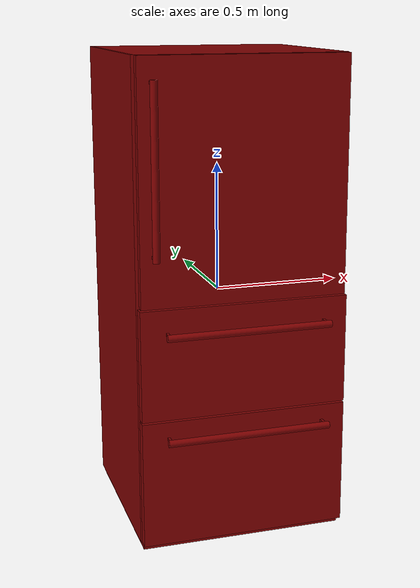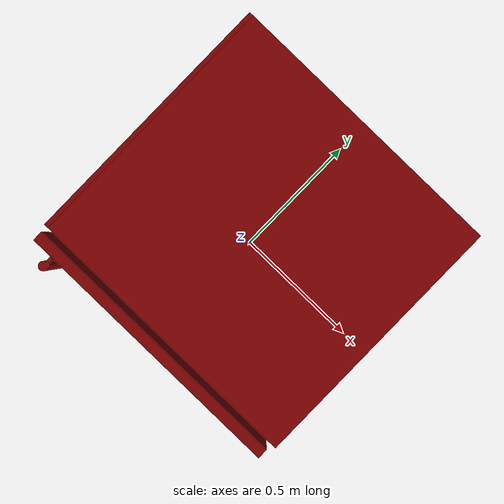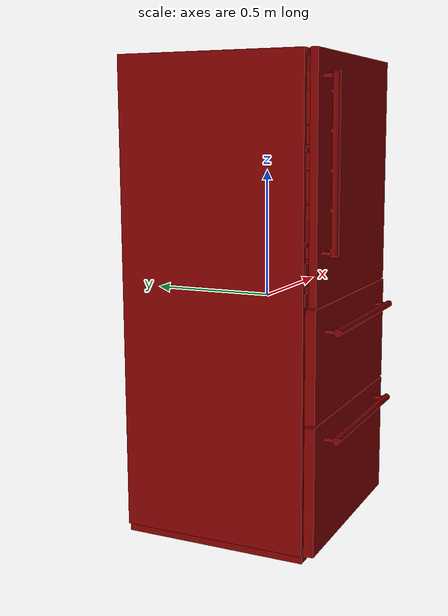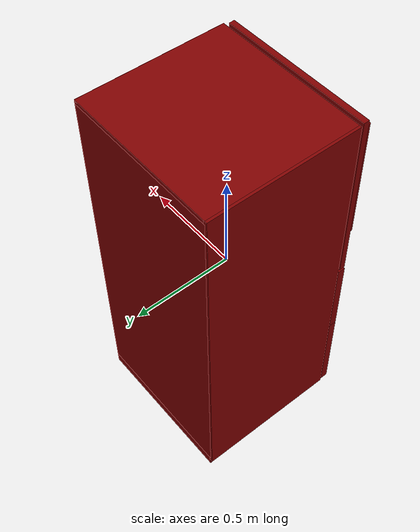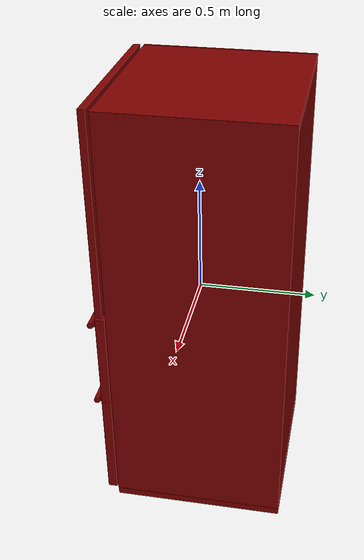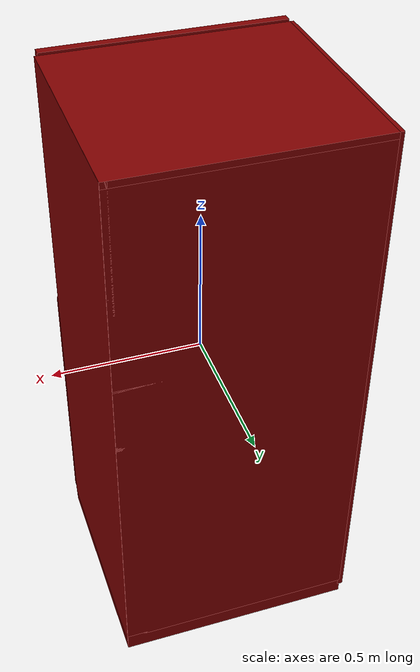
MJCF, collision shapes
<mujoco model="model">
  <compiler angle="radian"/>
  <asset>
    <mesh file="visuals/Body001.obj" name="Body001_vis"/>
    <mesh file="visuals/Body001_Clear.obj" name="Body001_Clear_vis"/>
    <mesh file="visuals/Door001.obj" name="Door001_vis"/>
    <mesh file="visuals/Door001_Clear.obj" name="Door001_Clear_vis"/>
    <mesh file="visuals/Drawer001.obj" name="Drawer001_vis"/>
    <mesh file="visuals/Drawer002.obj" name="Drawer002_vis"/>
    <mesh file="visuals/Drawer003.obj" name="Drawer003_vis"/>
    <texture file="visuals/T_BC001.png" name="Body001_material" type="2d"/>
    <material name="Body001_material" rgba="1 1 1 1.0" texture="Body001_material" shininess="0.141421377658844" specular="0.3103448502657381"/>
    <texture file="visuals/T_BC001.png" name="Body001_Clear_material" type="2d"/>
    <material name="Body001_Clear_material" rgba="1 1 1 0.3700787425041199" texture="Body001_Clear_material" shininess="0.5" specular="0.3103448502657381"/>
    <texture file="visuals/T_BC001.png" name="Door001_material" type="2d"/>
    <material name="Door001_material" rgba="1 1 1 1.0" texture="Door001_material" shininess="0.141421377658844" specular="0.3103448502657381"/>
    <texture file="visuals/T_BC001.png" name="Door001_Clear_material" type="2d"/>
    <material name="Door001_Clear_material" rgba="1 1 1 0.3700787425041199" texture="Door001_Clear_material" shininess="0.5" specular="0.3103448502657381"/>
    <texture file="visuals/T_BC001.png" name="Drawer001_material" type="2d"/>
    <material name="Drawer001_material" rgba="1 1 1 1.0" texture="Drawer001_material" shininess="0.141421377658844" specular="0.3103448502657381"/>
    <texture file="visuals/T_BC001.png" name="Drawer002_material" type="2d"/>
    <material name="Drawer002_material" rgba="1 1 1 1.0" texture="Drawer002_material" shininess="0.141421377658844" specular="0.3103448502657381"/>
    <texture file="visuals/T_BC001.png" name="Drawer003_material" type="2d"/>
    <material name="Drawer003_material" rgba="1 1 1 1.0" texture="Drawer003_material" shininess="0.141421377658844" specular="0.3103448502657381"/>
  </asset>
  <default>
    <default class="visual">
      <geom conaffinity="0" contype="0" group="1" type="mesh"/>
    </default>
    <default class="collision">
      <geom group="0" rgba="0.5 0 0 0.5"/>
    </default>
    <default class="spawn">
      <geom group="0" rgba="1 1 1 0.5" contype="0" conaffinity="0"/>
      <site group="0" rgba="1 1 1 0.5"/>
    </default>
    <default class="region">
      <geom group="1" conaffinity="0" contype="0" rgba="0 1 0 0"/>
    </default>
  </default>
  <worldbody>
    <body>
      <body name="object">
        <geom mesh="Body001_vis" type="mesh" solimp="0.998 0.998 0.001" solref="0.001 1" density="100" friction="0.95 0.3 0.1" class="visual" material="Body001_material"/>
        <geom class="collision" type="box" pos="-0.395007 0.053950 0.018018" size="0.009432611986994743 0.37056872248649597 0.9119754433631897" quat="1.0 0.0 0.0 0.0"/>
        <geom class="collision" type="box" pos="0.005401 0.053950 0.917801" size="0.3973832428455353 0.37056872248649597 0.012193256057798862" quat="1.0 0.0 0.0 0.0"/>
        <geom class="collision" type="box" pos="0.393167 0.053950 0.018018" size="0.01032690517604351 0.37056872248649597 0.9119754433631897" quat="1.0 0.0 0.0 0.0"/>
        <geom class="collision" type="box" pos="0.005401 0.063423 0.052184" size="0.3973832428455353 0.36109575629234314 0.023275410756468773" quat="1.0 0.0 0.0 0.0"/>
        <geom class="collision" type="box" pos="0.005401 0.054998 -0.897075" size="0.3973832428455353 0.36952078342437744 0.030046092346310616" quat="1.0 0.0 0.0 0.0"/>
        <geom class="collision" type="box" pos="0.005401 0.409895 0.018503" size="0.3973832428455353 0.014623885974287987 0.89103764295578" quat="1.0 0.0 0.0 0.0"/>
        <body name="Body001_Clear">
          <geom mesh="Body001_Clear_vis" type="mesh" solimp="0.998 0.998 0.001" solref="0.001 1" density="100" friction="0.95 0.3 0.1" class="visual" material="Body001_Clear_material"/>
          <geom class="collision" type="box" pos="0.005401 0.063423 0.588727" size="0.3973832428455353 0.36109575629234314 0.009213412180542946" quat="1.0 0.0 0.0 0.0"/>
          <geom class="collision" type="box" pos="0.005401 0.063423 0.252512" size="0.3973832428455353 0.36109575629234314 0.009213412180542946" quat="1.0 0.0 0.0 0.0"/>
        </body>
        <body name="fridge_door">
          <joint axis="0.0 0.0 1.0" pos="0.382911 -0.342220 0.487948" limited="true" name="fridge_door_joint" range="0.0 1.5707963267948966" type="hinge" damping="1" frictionloss="1" armature=".01" stiffness="0.05"/>
          <geom mesh="Door001_vis" type="mesh" solimp="0.998 0.998 0.001" solref="0.001 1" density="100" friction="0.95 0.3 0.1" class="visual" material="Door001_material"/>
          <geom class="collision" type="box" pos="-0.003158 -0.349392 0.484867" size="0.3936440944671631 0.014511649496853352 0.445126473903656" quat="1.0 0.0 0.0 0.0" name="fridge_door_main"/>
          <geom class="collision" type="cylinder" pos="-0.348223 -0.412659 0.536995" size="0.013434533961117268 0.31531861424446106" quat="1.0 0.0 0.0 0.0" name="fridge_door_handle_main"/>
          <geom class="collision" type="box" pos="-0.348316 -0.383619 0.232319" size="0.005130494944751263 0.022282758727669716 0.005130494944751263" quat="1.0 0.0 0.0 0.0" name="fridge_door_handle_1"/>
          <geom class="collision" type="box" pos="-0.348316 -0.383619 0.840019" size="0.005130494944751263 0.022282758727669716 0.005130494944751263" quat="1.0 0.0 0.0 0.0" name="fridge_door_handle_2"/>
          <body name="Door001_Clear">
            <geom mesh="Door001_Clear_vis" type="mesh" solimp="0.998 0.998 0.001" solref="0.001 1" density="100" friction="0.95 0.3 0.1" class="visual" material="Door001_Clear_material"/>
            <geom class="collision" type="box" pos="-0.175564 -0.205116 0.733024" size="0.1400785744190216 0.0052366615273058414 0.05930408090353012" quat="1.0 0.0 0.0 0.0"/>
            <geom class="collision" type="box" pos="-0.175564 -0.275800 0.681127" size="0.140078604221344 0.07298263162374496 0.007407377474009991" quat="1.0 0.0 0.0 0.0"/>
            <geom class="collision" type="box" pos="-0.313044 -0.275800 0.736022" size="0.005144244059920311 0.07298265397548676 0.059030089527368546" quat="1.0 0.0 0.0 0.0"/>
            <geom class="collision" type="box" pos="-0.037455 -0.275800 0.736022" size="0.00514424592256546 0.07298266142606735 0.05903010070323944" quat="1.0 0.0 0.0 0.0"/>
            <geom class="collision" type="box" pos="0.281671 -0.275800 0.736022" size="0.005144247319549322 0.07298268377780914 0.059030115604400635" quat="1.0 0.0 0.0 0.0"/>
            <geom class="collision" type="box" pos="0.008203 -0.275800 0.736022" size="0.005144248716533184 0.07298269122838974 0.05903013050556183" quat="1.0 0.0 0.0 0.0"/>
            <geom class="collision" type="box" pos="0.144622 -0.275800 0.681127" size="0.13901875913143158 0.07298270612955093 0.007407385855913162" quat="1.0 0.0 0.0 0.0"/>
            <geom class="collision" type="box" pos="0.144622 -0.205116 0.733024" size="0.13901880383491516 0.005236674100160599 0.05930417776107788" quat="1.0 0.0 0.0 0.0"/>
            <geom class="collision" type="box" pos="-0.021544 -0.209527 0.453475" size="0.3051843047142029 0.005236675962805748 0.059304188936948776" quat="1.0 0.0 0.0 0.0"/>
            <geom class="collision" type="box" pos="-0.021544 -0.278006 0.401578" size="0.30518433451652527 0.07077692449092865 0.007407390978187323" quat="1.0 0.0 0.0 0.0"/>
            <geom class="collision" type="box" pos="-0.324130 -0.278006 0.456473" size="0.005144257564097643 0.07077693939208984 0.0590301975607872" quat="1.0 0.0 0.0 0.0"/>
            <geom class="collision" type="box" pos="0.281671 -0.278006 0.456473" size="0.005144259426742792 0.07077694684267044 0.059030212461948395" quat="1.0 0.0 0.0 0.0"/>
          </body>
        </body>
        <body name="fridge_drawer0">
          <joint axis="0.0 -1.0 0.0" pos="0.001754 0.039656 0.201148" limited="true" name="fridge_drawer0_joint" range="0.0 0.45" type="slide" damping="1" frictionloss="1" armature=".01" stiffness="0.05"/>
          <geom mesh="Drawer003_vis" type="mesh" solimp="0.998 0.998 0.001" solref="0.001 1" density="100" friction="0.95 0.3 0.1" class="visual" material="Drawer003_material"/>
          <geom class="collision" type="box" pos="-0.001996 0.335252 0.152234" size="0.35589125752449036 0.006798130925744772 0.07002135366201401" quat="1.0 0.0 0.0 0.0"/>
          <geom class="collision" type="box" pos="-0.347725 0.041658 0.152234" size="0.01123232115060091 0.28192782402038574 0.07002135366201401" quat="1.0 0.0 0.0 0.0"/>
          <geom class="collision" type="box" pos="0.345161 0.041658 0.152234" size="0.012115423567593098 0.28192782402038574 0.07002135366201401" quat="1.0 0.0 0.0 0.0"/>
          <geom class="collision" type="box" pos="0.001713 0.041658 0.094460" size="0.34323397278785706 0.28192782402038574 0.012246621772646904" quat="1.0 0.0 0.0 0.0"/>
          <geom class="collision" type="box" pos="0.293435 -0.248012 0.152234" size="0.060460224747657776 0.006798130925744772 0.07002135366201401" quat="1.0 0.0 0.0 0.0"/>
          <geom class="collision" type="box" pos="-0.001996 -0.248012 0.126077" size="0.35589125752449036 0.006798130925744772 0.043863922357559204" quat="1.0 0.0 0.0 0.0"/>
          <geom class="collision" type="box" pos="-0.000290 -0.248012 0.152234" size="0.0964420735836029 0.006798130925744772 0.07002135366201401" quat="1.0 0.0 0.0 0.0"/>
          <geom class="collision" type="box" pos="-0.296915 -0.248012 0.152234" size="0.061095669865608215 0.006798130925744772 0.07002135366201401" quat="1.0 0.0 0.0 0.0"/>
          <geom class="region" name="reg_fridge_drawer0" type="box" pos="0.001 0.045 0.165" size="0.325 0.255 0.065"/>
        </body>
        <body name="freezer1">
          <joint axis="0.0 -1.0 0.0" pos="-0.000001 -0.029404 -0.176872" limited="true" name="freezer1_door_joint" range="0.0 0.50" type="slide" damping="1" frictionloss="1" armature=".01" stiffness="0.05"/>
          <geom mesh="Drawer001_vis" type="mesh" solimp="0.998 0.998 0.001" solref="0.001 1" density="100" friction="0.95 0.3 0.1" class="visual" material="Drawer001_material"/>
          <geom class="collision" type="box" pos="-0.000899 -0.343637 -0.178380" size="0.39962247014045715 0.01995452307164669 0.21172763407230377" quat="1.0 0.0 0.0 0.0" name="freezer1_door_main"/>
          <geom class="collision" type="box" pos="-0.027157 0.328123 -0.189678" size="0.3364948630332947 0.013647232204675674 0.1492374986410141" quat="1.0 0.0 0.0 0.0"/>
          <geom class="collision" type="box" pos="-0.009671 -0.315124 -0.158733" size="0.35103321075439453 0.020465156063437462 0.18018293380737305" quat="1.0 0.0 0.0 0.0"/>
          <geom class="collision" type="box" pos="-0.333259 0.008059 -0.189678" size="0.030393287539482117 0.310696542263031 0.14923758804798126" quat="1.0 0.0 0.0 0.0"/>
          <geom class="collision" type="box" pos="0.313057 0.020650 -0.189678" size="0.031079553067684174 0.3232879042625427 0.14923764765262604" quat="1.0 0.0 0.0 0.0"/>
          <geom class="collision" type="box" pos="-0.017196 0.008059 -0.319117" size="0.299781858921051 0.31069672107696533 0.019799286499619484" quat="1.0 0.0 0.0 0.0"/>
          <geom class="collision" type="cylinder" pos="0.001860 -0.415005 -0.057822" size="0.013434533961117268 0.31531861424446106" quat="0.7071068286895752 -0.0 0.7071067690849304 0.0" name="freezer1_door_handle_main"/>
          <geom class="collision" type="box" pos="-0.300499 -0.383619 -0.057882" size="0.005130494944751263 0.022282758727669716 0.005130494944751263" quat="1.0 0.0 0.0 0.0" name="freezer1_door_handle_1"/>
          <geom class="collision" type="box" pos="0.307147 -0.383619 -0.057882" size="0.005130494944751263 0.022282758727669716 0.005130494944751263" quat="1.0 0.0 0.0 0.0" name="freezer1_door_handle_2"/>
          <geom class="region" name="reg_freezer1" type="box" pos="-0.01 0.01 -0.15" size="0.28 0.27 0.15"/>
        </body>
        <body name="freezer0">
          <joint axis="0.0 -1.0 0.0" pos="-0.000001 -0.029404 -0.641283" limited="true" name="freezer0_door_joint" range="0.0 0.50" type="slide" damping="1" frictionloss="1" armature=".01" stiffness="0.05"/>
          <geom mesh="Drawer002_vis" type="mesh" solimp="0.998 0.998 0.001" solref="0.001 1" density="100" friction="0.95 0.3 0.1" class="visual" material="Drawer002_material"/>
          <geom class="collision" type="box" pos="-0.017196 0.008059 -0.819210" size="0.2997819483280182 0.3106967806816101 0.01979929208755493" quat="1.0 0.0 0.0 0.0"/>
          <geom class="collision" type="box" pos="0.313057 0.020650 -0.690613" size="0.03107956051826477 0.3232880234718323 0.1483958661556244" quat="1.0 0.0 0.0 0.0"/>
          <geom class="collision" type="box" pos="-0.333259 0.008059 -0.690613" size="0.030393237248063087 0.31069695949554443 0.14839589595794678" quat="1.0 0.0 0.0 0.0"/>
          <geom class="collision" type="box" pos="-0.009671 -0.315124 -0.662204" size="0.3510338068008423 0.020465193316340446 0.17680495977401733" quat="1.0 0.0 0.0 0.0"/>
          <geom class="collision" type="box" pos="-0.025865 0.328123 -0.690613" size="0.334839791059494 0.013647256419062614 0.14839598536491394" quat="1.0 0.0 0.0 0.0"/>
          <geom class="collision" type="box" pos="-0.000899 -0.343637 -0.643924" size="0.39962342381477356 0.019954580813646317 0.24627697467803955" quat="1.0 0.0 0.0 0.0" name="freezer0_door_main"/>
          <geom class="collision" type="cylinder" pos="0.001860 -0.415005 -0.461229" size="0.013434533961117268 0.31531861424446106" quat="0.7071068286895752 -0.0 0.7071067690849304 0.0" name="freezer0_door_handle_main"/>
          <geom class="collision" type="box" pos="-0.300499 -0.383619 -0.462430" size="0.005130494944751263 0.022282758727669716 0.005130494944751263" quat="1.0 0.0 0.0 0.0" name="freezer0_door_handle_1"/>
          <geom class="collision" type="box" pos="0.307147 -0.383619 -0.462430" size="0.005130494944751263 0.022282758727669716 0.005130494944751263" quat="1.0 0.0 0.0 0.0" name="freezer0_door_handle_2"/>
          <geom class="region" name="reg_freezer0" type="box" pos="-0.01 0.01 -0.65" size="0.28 0.27 0.15"/>
        </body>
        <geom class="region" name="reg_main" type="box" pos="0.0 0.03151700000000002 0.0" size="0.408 0.396017 0.93707"/>
        <geom class="region" name="reg_fridge_shelf0" type="box" pos="0.001 0.08 0.420" size="0.37 0.28 0.15"/>
        <geom class="region" name="reg_fridge_shelf1" type="box" pos="0.001 0.08 0.755" size="0.37 0.28 0.15"/>
      </body>
    </body>
  </worldbody>
  <actuator>
    <motor name="fridge_door_joint_actuator" joint="fridge_door_joint" gear="50"/>
    <motor name="fridge_drawer0_joint_actuator" joint="fridge_drawer0_joint" gear="50"/>
    <motor name="freezer1_door_joint_actuator" joint="freezer1_door_joint" gear="50"/>
    <motor name="freezer0_door_joint_actuator" joint="freezer0_door_joint" gear="50"/>
  </actuator>
</mujoco>
